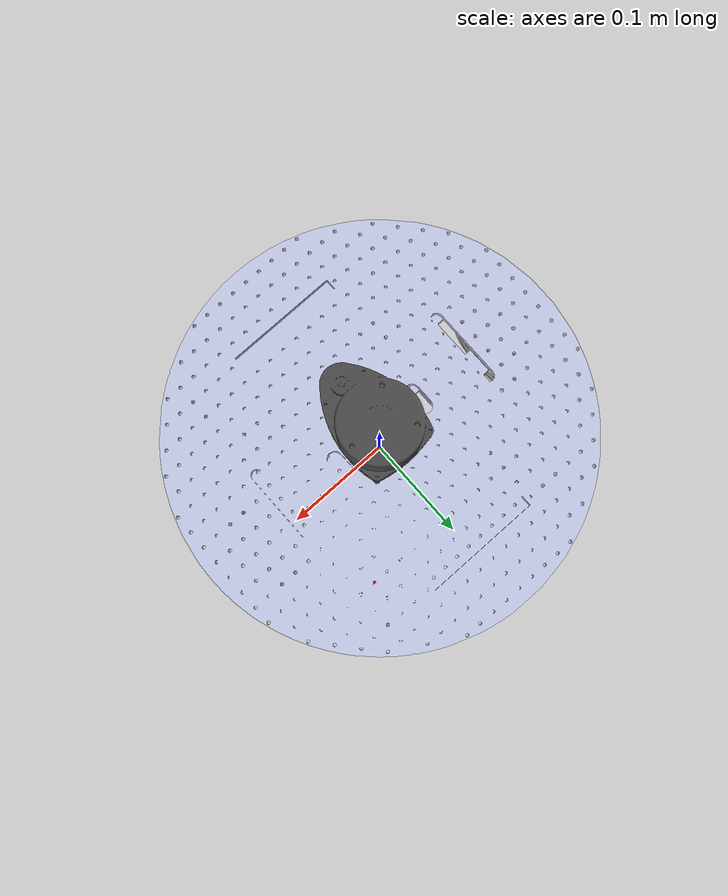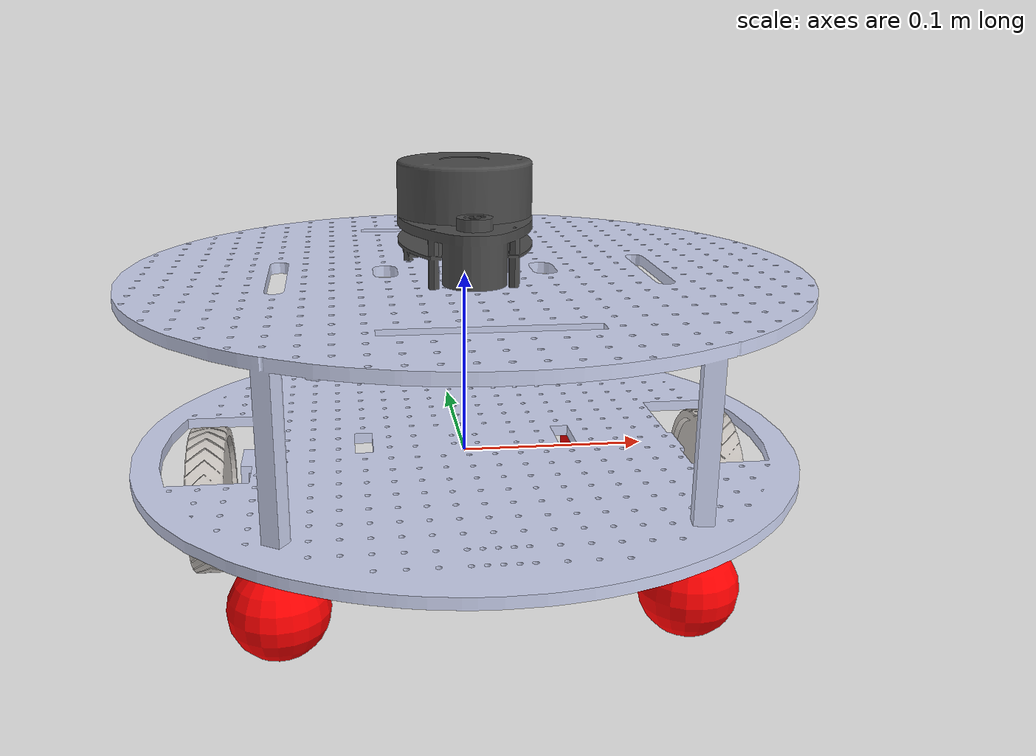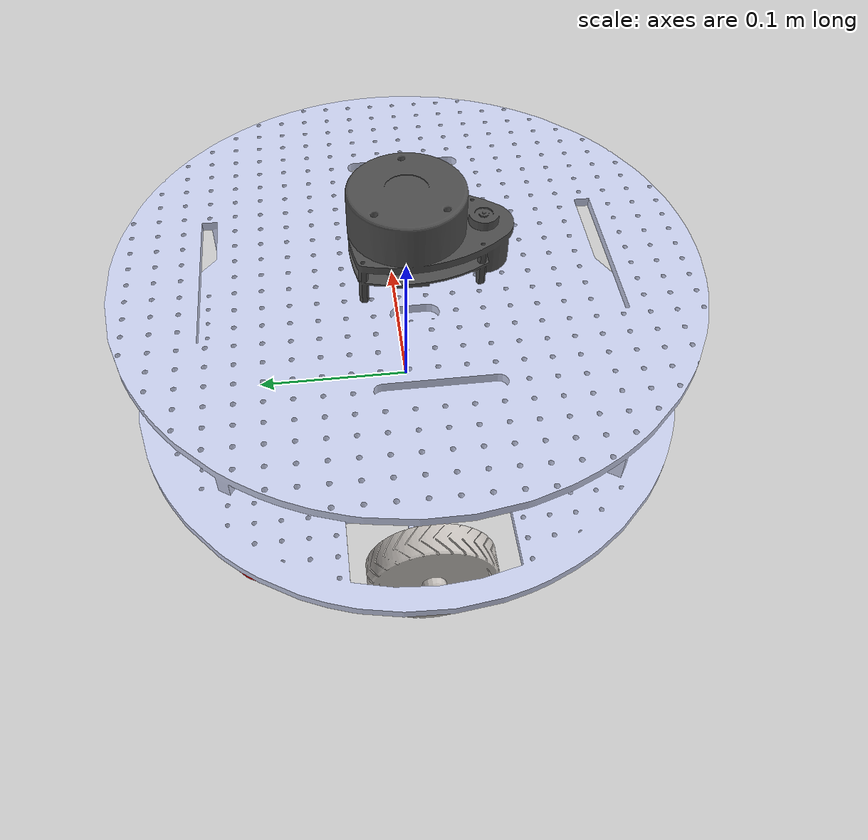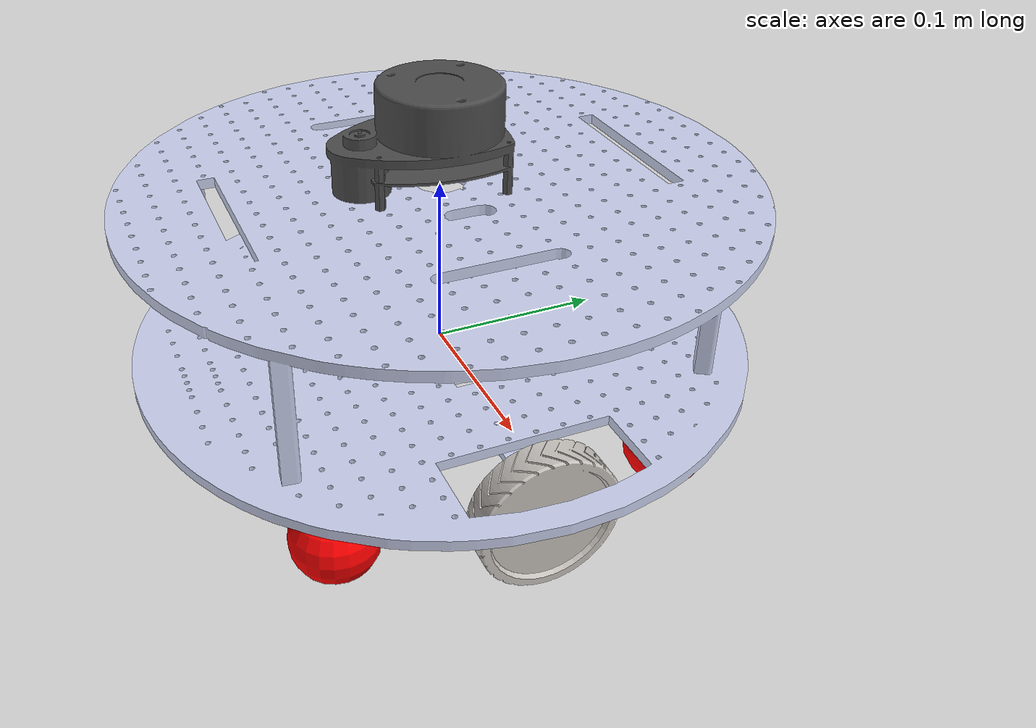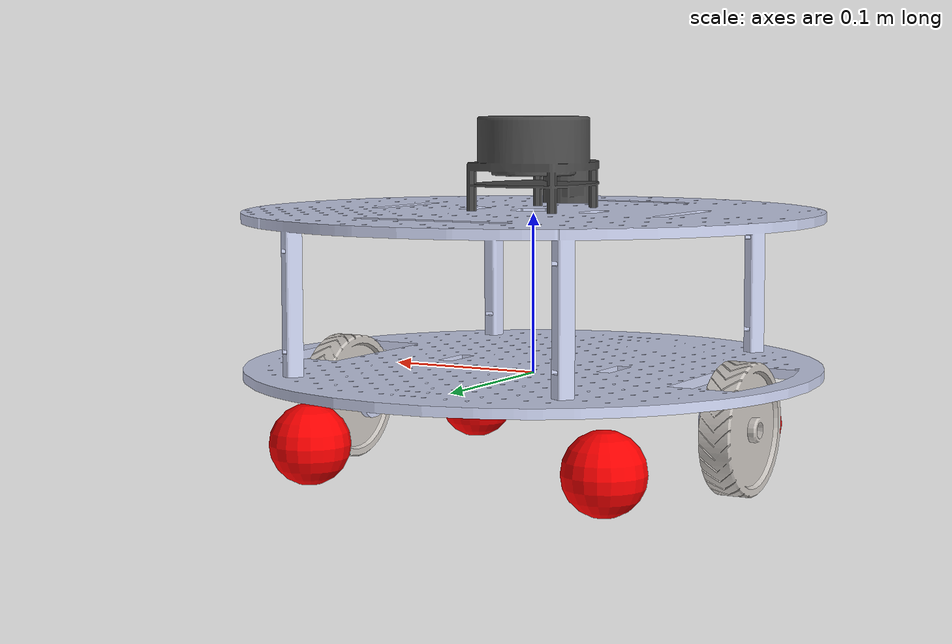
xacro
<?xml version="1.0" encoding="utf-8"?>
<robot
  name="marses_robots" xmlns:xacro="http://www.ros.org/wiki/xacro">
  <xacro:arg name="simulated_robot" default="diffRobot"/>
  <xacro:property name="simulated_robot_pkg" value="$(arg simulated_robot)" />
  <xacro:include filename="$(find ${simulated_robot_pkg})/urdf/$(arg simulated_robot).urdf.xacro"/>
  <xacro:include filename="$(find simulation_env)/urdf/robot_io.gazebo"/>

</robot>

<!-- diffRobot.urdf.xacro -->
<robot
  name="diffRobot">
  <link
    name="base_link">
    <inertial>
      <origin
        xyz="0.000103872023518377 3.58628358236025E-05 0.0515454710632992"
        rpy="0 0 0" />
      <mass
        value="1.14004067009862" />
      <inertia
        ixx="0.00941706968445277"
        ixy="1.12232392243467E-06"
        ixz="-4.93915969703524E-21"
        iyy="0.0084577122951622"
        iyz="5.95773147775248E-19"
        izz="0.0178232711919201" />
    </inertial>
    <visual>
      <origin
        xyz="0 0 0"
        rpy="0 0 0" />
      <geometry>
        <mesh
          filename="package://diffRobot/meshes/base_link.STL" />
      </geometry>
      <material
        name="">
        <color
          rgba="0.792156862745098 0.819607843137255 0.933333333333333 1" />
      </material>
    </visual>
    <collision>
      <origin
        xyz="0 0 0"
        rpy="0 0 0" />
      <geometry>
        <mesh
          filename="package://diffRobot/meshes/base_link.STL" />
      </geometry>
    </collision>
  </link>
  <link
    name="Rwheel">
    <inertial>
      <origin
        xyz="-2.65412691824451E-16 1.15393805621977E-14 0.0125000000000003"
        rpy="0 0 0" />
      <mass
        value="0.618834179086721" />
      <inertia
        ixx="0.000274104490862329"
        ixy="8.71563021406785E-17"
        ixz="-6.19148140798845E-19"
        iyy="0.000274104490862329"
        iyz="5.78124763710376E-17"
        izz="0.000518442401620523" />
    </inertial>
    <visual>
      <origin
        xyz="0 0 0"
        rpy="0 0 0" />
      <geometry>
        <mesh
          filename="package://diffRobot/meshes/Rwheel.STL" />
      </geometry>
      <material
        name="">
        <color
          rgba="0.776470588235294 0.756862745098039 0.737254901960784 1" />
      </material>
    </visual>
    <collision>
      <origin
        xyz="0 0 0"
        rpy="0 0 0" />
      <geometry>
        <mesh
          filename="package://diffRobot/meshes/Rwheel.STL" />
      </geometry>
    </collision>
  </link>
  <joint
    name="Rjoint"
    type="continuous">
    <origin
      xyz="-0.1275 0 -0.0239999999999999"
      rpy="1.5707963267949 0.287929555395445 -1.5707963267949" />
    <parent
      link="base_link" />
    <child
      link="Rwheel" />
    <axis
      xyz="0 0 1" />
  </joint>
  <link
    name="Lwheel">
    <inertial>
      <origin
        xyz="-9.64506252643105E-16 -1.06754882711613E-14 -0.0125000000000001"
        rpy="0 0 0" />
      <mass
        value="0.61883417908672" />
      <inertia
        ixx="0.000274104490862329"
        ixy="-8.71495258771005E-17"
        ixz="7.0203286930098E-19"
        iyy="0.000274104490862329"
        iyz="5.80282536581578E-17"
        izz="0.000518442401620523" />
    </inertial>
    <visual>
      <origin
        xyz="0 0 0"
        rpy="0 0 0" />
      <geometry>
        <mesh
          filename="package://diffRobot/meshes/Lwheel.STL" />
      </geometry>
      <material
        name="">
        <color
          rgba="0.776470588235294 0.756862745098039 0.737254901960784 1" />
      </material>
    </visual>
    <collision>
      <origin
        xyz="0 0 0"
        rpy="0 0 0" />
      <geometry>
        <mesh
          filename="package://diffRobot/meshes/Lwheel.STL" />
      </geometry>
    </collision>
  </link>
  <joint
    name="Ljoint"
    type="continuous">
    <origin
      xyz="0.127499999999999 0 -0.024"
      rpy="1.5707963267949 0.434085925858152 -1.57079632679489" />
    <parent
      link="base_link" />
    <child
      link="Lwheel" />
    <axis
      xyz="0 0 1" />
  </joint>
  <link
    name="lidar">
    <inertial>
      <origin
        xyz="-9.17768374699226E-05 -0.00676832715317712 -0.0219378521073858"
        rpy="0 0 0" />
      <mass
        value="1.33041048124832" />
      <inertia
        ixx="0.000960497023041248"
        ixy="8.00271259590308E-07"
        ixz="-3.0960362664798E-06"
        iyy="0.000614736954229147"
        iyz="-0.000158189979278382"
        izz="0.00109812375363565" />
    </inertial>
    <visual>
      <origin
        xyz="0 0 0"
        rpy="0 0 0" />
      <geometry>
        <mesh
          filename="package://diffRobot/meshes/lidar.STL" />
      </geometry>
      <material
        name="">
        <color
          rgba="0.298039215686275 0.298039215686275 0.298039215686275 1" />
      </material>
    </visual>
    <collision>
      <origin
        xyz="0 0 0"
        rpy="0 0 0" />
      <geometry>
        <mesh
          filename="package://diffRobot/meshes/lidar.STL" />
      </geometry>
    </collision>
  </link>
  <joint
    name="lidarJoint"
    type="fixed">
    <origin
      xyz="0 0 0.1592"
      rpy="0 0 0" />
    <parent
      link="base_link" />
    <child
      link="lidar" />
    <axis
      xyz="0 0 0" />
  </joint>
</robot>

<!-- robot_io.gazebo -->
<robot xmlns:xacro="http://www.ros.org/wiki/xacro">
<!-- =========================================motor driver========================================================= -->
        <gazebo>
        <plugin name="differential_drive_controller" filename="libdiff_p.so">

            <!-- Plugin update rate in Hz -->
            <updateRate>100</updateRate>

            <!-- Name of left joint, defaults to `left_joint` -->
            <leftJoint>Ljoint</leftJoint>

            <!-- Name of right joint, defaults to `right_joint` -->
            <rightJoint>Rjoint</rightJoint>
            <!-- #TODO this param needs to be set and tuned correctly -->
            <!-- The distance from the center of one wheel to the other, in meters, defaults to 0.34 m -->
            <wheelSeparation>0.4</wheelSeparation>

            <!-- Diameter of the wheels, in meters, defaults to 0.15 m -->
            <wheelDiameter>0.1</wheelDiameter>

            <!-- Wheel acceleration, in rad/s^2, defaults to 0.0 rad/s^2 -->
            <wheelAcceleration>2.0</wheelAcceleration>

            <!-- Maximum torque which the wheels can produce, in Nm, defaults to 5 Nm -->
            <wheelTorque>20</wheelTorque>

            <!-- Topic to receive geometry_msgs/Twist message commands, defaults to `cmd_vel` -->
            <commandTopic>cmd_vel</commandTopic>

            <!-- Topic to publish nav_msgs/Odometry messages, defaults to `odom` -->
            <odometryTopic>odom</odometryTopic>

            <!-- Odometry frame, defaults to `odom` -->
            <odometryFrame>odom</odometryFrame>

            <!-- Robot frame to calculate odometry from, defaults to `base_footprint` -->
            <robotBaseFrame>base_link</robotBaseFrame>

            <!-- Odometry source, 0 for ENCODER, 1 for WORLD, defaults to WORLD -->
            <odometrySource>1</odometrySource>

            <!-- Set to true to publish transforms for the wheel links, defaults to false -->
            <publishWheelTF>false</publishWheelTF>

            <!-- Set to true to publish transforms for the odometry, defaults to true -->
            <publishOdom>true</publishOdom>

            <!-- Set to true to publish sensor_msgs/JointState on /joint_states for the wheel joints, defaults to false -->
            <publishWheelJointState>true</publishWheelJointState>

            <!-- Set to true to swap right and left wheels, defaults to true -->
            <legacyMode>false</legacyMode>
        </plugin>

        </gazebo>
        <gazebo reference= "base_link">
          <plugin name='test_clock' filename='libclock_plugin.so'/>
        </gazebo>
<!-- =============================================colors======================================================         -->
        <gazebo reference= "base_link">
            <material>
                Gazebo/White
            </material>
        </gazebo>

        <gazebo reference= "Rwheel">
            <material>
                Gazebo/Black
            </material>
        </gazebo>
        <gazebo reference= "Lwheel">
            <material>
                Gazebo/Black
            </material>
        </gazebo>
        <gazebo reference= "custer_wheel1">
            <material>
                Gazebo/Gray
            </material>
        </gazebo>
        <gazebo reference= "custer_wheel2">
            <material>
                Gazebo/Gray
            </material>
        </gazebo>
        <gazebo reference= "custer_wheel3">
            <material>
                Gazebo/Gray
            </material>
        </gazebo>
        <gazebo reference= "custer_wheel4">
            <material>
                Gazebo/Gray
            </material>
        </gazebo>
        <gazebo reference= "lidar">
            <material>
                Gazebo/Black
            </material>
        </gazebo>

<gazebo reference="custer_wheel1">
  <mu1>0</mu1>
  <mu2>0</mu2>
  <slip1>1.0</slip1>
  <slip2>1.0</slip2>
</gazebo>
<gazebo reference="custer_wheel2">
  <mu1>0</mu1>
  <mu2>0</mu2>
  <slip1>1.0</slip1>
  <slip2>1.0</slip2>
</gazebo>
<gazebo reference="custer_wheel3">
  <mu1>0</mu1>
  <mu2>0</mu2>
  <slip1>1.0</slip1>
  <slip2>1.0</slip2>
</gazebo>
<gazebo reference="custer_wheel4">
  <mu1>0</mu1>
  <mu2>0</mu2>
  <slip1>1.0</slip1>
  <slip2>1.0</slip2>
</gazebo>

<!-- =======================================lidar============================================ -->

 <!-- hokuyo -->
<gazebo reference="lidar">
    <sensor type="gpu_ray" name="head_hokuyo_sensor">
      <pose>0 0 0 0 0 0</pose>
      <visualize>true</visualize>
      <update_rate>100</update_rate>
      <ray>
        <scan>
          <horizontal>
            <samples>360</samples>
            <resolution>1</resolution>
            <min_angle>0</min_angle>
            <max_angle>6.28</max_angle>
          </horizontal>
        </scan>
        <range>
          <min>0.10</min>
          <max>30.0</max>
          <resolution>0.01</resolution>
        </range>
        <noise>
          <type>gaussian</type>
          <mean>0.0</mean>
          <stddev>0.01</stddev>
        </noise>
      </ray>
      <plugin name="gazebo_ros_head_hokuyo_controller" filename="libgazebo_ros_gpu_laser.so">
        <topicName>/scan</topicName>
        <frameName>lidar</frameName>
      </plugin>
    </sensor>
  </gazebo>

<!-- ========================================collision ================================================== -->

<gazebo reference="base_link">
<sensor name="main_bumper" type="contact">
<geom>base_geom</geom>
    <selfCollide>true</selfCollide>
    <alwaysOn>true</alwaysOn>
    <updateRate>100.0</updateRate>
    <material>Gazebo/Red</material>
    <contact>
        <!-- the collision name found using "gz sdf -p PKG_FROM_SOLIDWORKS.urdf.xacro" -->
       <collision>base_link_collision</collision>
    </contact>
    <plugin name="gazebo_ros_bumper_controller" filename="libgazebo_ros_bumper.so">
        <bumperTopicName>collision/bumper_vals</bumperTopicName>
        <frameName>world</frameName>
    </plugin>
</sensor>
</gazebo>

  <!-- ==================================caters settings========================================= -->
<link name="custer_wheel1">
    <inertial>
      <origin xyz="0.0 0.0 0.0" rpy="0.0 0.0 0.0"/>
      <mass value="0.1"/>
      <inertia ixx="0.002" ixy="0.0" ixz="0.0" iyy="0.002" iyz="0.0" izz="0.002"/>
    </inertial>

    <visual name="">
      <origin xyz="0.0 0.0 0.0" rpy="0.0 0.0 0.0"/>
      <geometry>
         <sphere radius="0.025"/>
      </geometry>

      <material name="">
        <color rgba="1.0 0.0 0.0 1.0"/>
        <texture filename=""/>
      </material>
    </visual>

    <collision>
      <origin xyz="0.0 0.0 0.0" rpy="0.0 0.0 0.0"/>
      <geometry>
        <sphere radius="0.025"/>
      </geometry>
    </collision>
  </link>
  <link name="custer_wheel2">
    <inertial>
      <origin xyz="0.0 0.0 0.0" rpy="0.0 0.0 0.0"/>
      <mass value="0.1"/>
      <inertia ixx="0.002" ixy="0.0" ixz="0.0" iyy="0.002" iyz="0.0" izz="0.002"/>
    </inertial>

    <visual name="">
      <origin xyz="0.0 0.0 0.0" rpy="0.0 0.0 0.0"/>
      <geometry>
         <sphere radius="0.025"/>
      </geometry>

      <material name="">
        <color rgba="1.0 0.0 0.0 1.0"/>
        <texture filename=""/>
      </material>
    </visual>

    <collision>
      <origin xyz="0.0 0.0 0.0" rpy="0.0 0.0 0.0"/>
      <geometry>
        <sphere radius="0.025"/>
      </geometry>
    </collision>
  </link>
  <link name="custer_wheel3">
    <inertial>
      <origin xyz="0.0 0.0 0.0" rpy="0.0 0.0 0.0"/>
      <mass value="0.1"/>
      <inertia ixx="0.002" ixy="0.0" ixz="0.0" iyy="0.002" iyz="0.0" izz="0.002"/>
    </inertial>

    <visual name="">
      <origin xyz="0.0 0.0 0.0" rpy="0.0 0.0 0.0"/>
      <geometry>
         <sphere radius="0.025"/>
      </geometry>

      <material name="">
        <color rgba="1.0 0.0 0.0 1.0"/>
        <texture filename=""/>
      </material>
    </visual>

    <collision>
      <origin xyz="0.0 0.0 0.0" rpy="0.0 0.0 0.0"/>
      <geometry>
        <sphere radius="0.025"/>
      </geometry>
    </collision>
  </link>
  <link name="custer_wheel4">
    <inertial>
      <origin xyz="0.0 0.0 0.0" rpy="0.0 0.0 0.0"/>
      <mass value="0.1"/>
      <inertia ixx="0.002" ixy="0.0" ixz="0.0" iyy="0.002" iyz="0.0" izz="0.002"/>
    </inertial>

    <visual name="">
      <origin xyz="0.0 0.0 0.0" rpy="0.0 0.0 0.0"/>
      <geometry>
         <sphere radius="0.025"/>
      </geometry>

      <material name="">
        <color rgba="1.0 0.0 0.0 1.0"/>
        <texture filename=""/>
      </material>
    </visual>

    <collision>
      <origin xyz="0.0 0.0 0.0" rpy="0.0 0.0 0.0"/>
      <geometry>
        <sphere radius="0.025"/>
      </geometry>
    </collision>
  </link>

  <link name="depth">
    <inertial>
      <origin xyz="0.0 0.0 0.0" rpy="0.0 0.0 0.0"/>
      <mass value="0.1"/>
      <inertia ixx="0.002" ixy="0.0" ixz="0.0" iyy="0.002" iyz="0.0" izz="0.002"/>
    </inertial>

    <collision>
      <origin xyz="0.0 0.0 0.0" rpy="0.0 0.0 0.0"/>
      <geometry>
        <sphere radius="0.025"/>
      </geometry>
    </collision>
  </link>
<!-- ===================================custer joints========================================== -->
  <joint name="custer_joint1" type="fixed">
    <origin xyz="0.1 0.1 -0.038" rpy="0.0 0.0 0.0"/>
    <parent link="base_link"/>
    <child link="custer_wheel1"/>
    <axis xyz="0.0 0.0 0.0"/>
    <limit lower="0.0" upper="0.0" effort="0.0" velocity="0.0"/>
  </joint>

  <joint name="custer_joint2" type="fixed">
    <origin xyz="-0.1 -0.1 -0.038" rpy="0.0 0.0 0.0"/>
    <parent link="base_link"/>
    <child link="custer_wheel2"/>
    <axis xyz="0.0 0.0 0.0"/>
    <limit lower="0.0" upper="0.0" effort="0.0" velocity="0.0"/>
  </joint>

  <joint name="custer_joint3" type="fixed">
    <origin xyz="-0.1 0.1 -0.038" rpy="0.0 0.0 0.0"/>
    <parent link="base_link"/>
    <child link="custer_wheel3"/>
    <axis xyz="0.0 0.0 0.0"/>
    <limit lower="0.0" upper="0.0" effort="0.0" velocity="0.0"/>
  </joint>

  <joint name="custer_joint4" type="fixed">
    <origin xyz="0.1 -0.1 -0.038" rpy="0.0 0.0 0.0"/>
    <parent link="base_link"/>
    <child link="custer_wheel4"/>
    <axis xyz="0.0 0.0 0.0"/>
    <limit lower="0.0" upper="0.0" effort="0.0" velocity="0.0"/>
  </joint>

  <joint name="depthJoint" type="fixed">
    <origin xyz="0.0 0.1 0.11" rpy="0.0 0.0 1.57"/>
    <parent link="base_link"/>
    <child link="depth"/>
    <axis xyz="0.0 0.0 0.0"/>
    <limit lower="0.0" upper="0.0" effort="0.0" velocity="0.0"/>
  </joint>

<!-- ===================================depth camera============================================== -->

<!-- ===================================sonar==================================================== -->
<!-- ranges may need to be adjusted -->

</robot>
